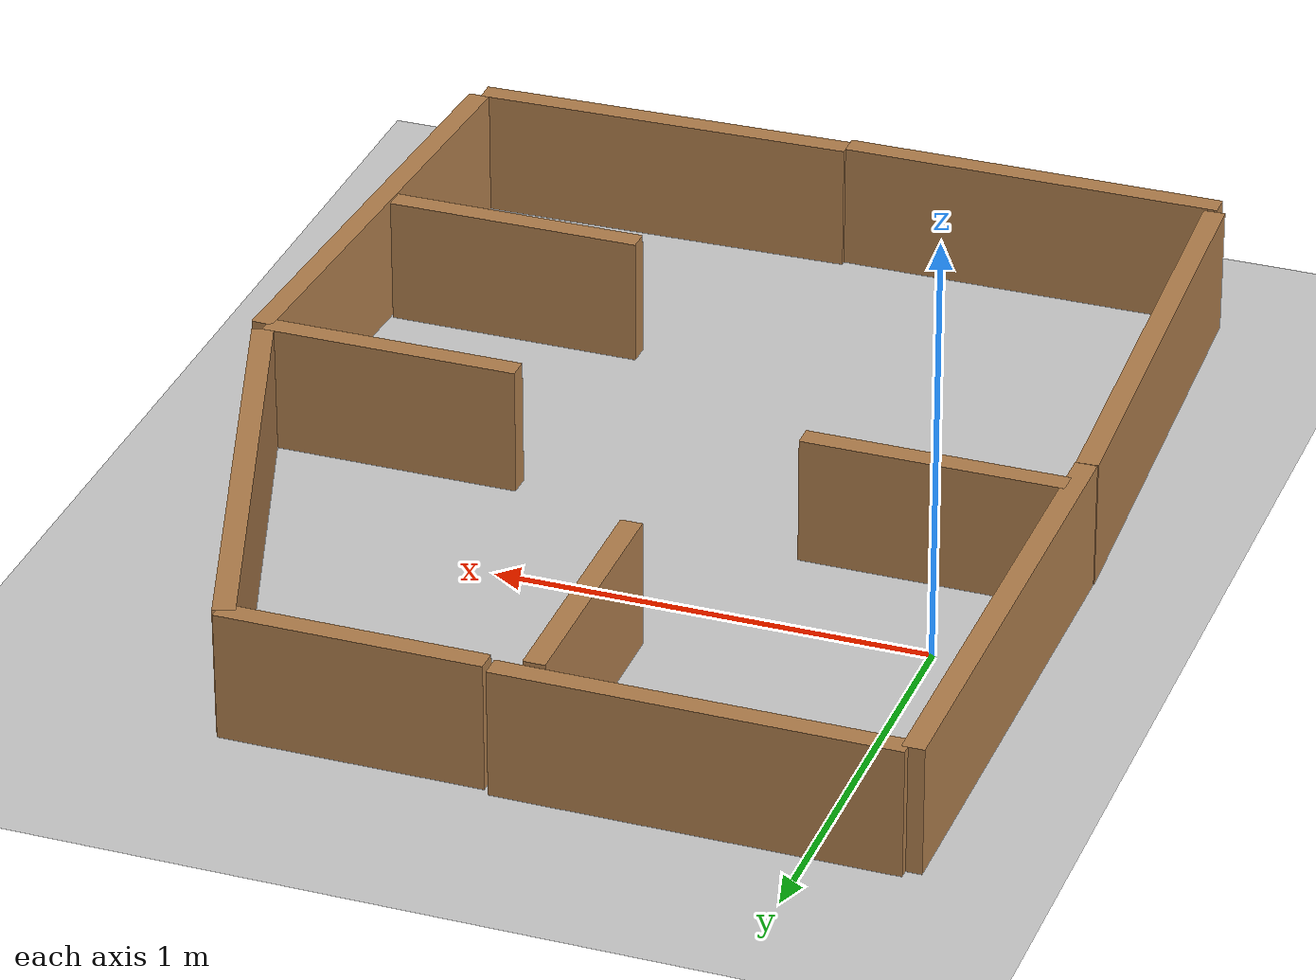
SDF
<sdf version="1.7">
 <world name="default">
  <light name="sun" type="directional">
   <pose>0 0 10 0 -0 0</pose>
   <diffuse>0.8 0.8 0.8 1</diffuse>
   <specular>0.2 0.2 0.2 1</specular>
   <attenuation>
    <range>1000</range>
    <constant>0.9</constant>
    <linear>0.01</linear>
    <quadratic>0.001</quadratic>
   </attenuation>
   <direction>-0.5 0.1 -0.9</direction>
   <spot><inner_angle>0</inner_angle><outer_angle>0</outer_angle><falloff>0</falloff></spot>
  </light>
  <model name="ground_plane">
   <static>1</static>
   <link name="link">
    <collision name="collision">
     <geometry><plane><normal>0 0 1</normal><size>100 100</size></plane></geometry>
     <surface><friction><ode><mu>100</mu><mu2>50</mu2></ode></friction></surface>
    </collision>
    <visual name="visual">
     <cast_shadows>0</cast_shadows>
     <geometry><plane><normal>0 0 1</normal><size>100 100</size></plane></geometry>
     <material>
      <script><uri>file://media/materials/scripts/gazebo.material</uri><name>Gazebo/Grey</name></script>
     </material>
    </visual>
   </link>
  </model>
  <gravity>0 0 -9.8</gravity>
  <magnetic_field>6e-06 2.3e-05 -4.2e-05</magnetic_field>
  <atmosphere type="adiabatic"/>
  <physics type="ode">
   <max_step_size>0.001</max_step_size>
   <real_time_factor>1</real_time_factor>
   <real_time_update_rate>1000</real_time_update_rate>
  </physics>
  <scene><ambient>0.4 0.4 0.4 1</ambient><background>0.7 0.7 0.7 1</background><shadows>1</shadows></scene>
  <spherical_coordinates>
   <surface_model>EARTH_WGS84</surface_model>
   <latitude_deg>0</latitude_deg>
   <longitude_deg>0</longitude_deg>
   <elevation>0</elevation>
   <heading_deg>0</heading_deg>
  </spherical_coordinates>
  <model name="wall120cm">
   <pose>-0.214479 0.205223 0 0 -0 1.56892</pose>
   <link name="Wall_11">
    <collision name="Wall_11_Collision">
     <geometry><box><size>1.2 0.05 0.3</size></box></geometry>
     <pose>0 0 0.15 0 -0 0</pose>
    </collision>
    <visual name="Wall_11_Visual">
     <pose>0 0 0.15 0 -0 0</pose>
     <geometry><box><size>1.2 0.05 0.3</size></box></geometry>
     <material>
      <script><uri>file://media/materials/scripts/gazebo.material</uri><name>Gazebo/Wood</name></script>
      <ambient>1 1 1 1</ambient>
     </material>
     <meta><layer>0</layer></meta>
    </visual>
   </link>
   <static>1</static>
  </model>
  <model name="wall120cm_0">
   <pose>-0.189576 -0.995457 0 0 -0 1.61665</pose>
   <link name="Wall_11">
    <collision name="Wall_11_Collision">
     <geometry><box><size>1.2 0.05 0.3</size></box></geometry>
     <pose>0 0 0.15 0 -0 0</pose>
    </collision>
    <visual name="Wall_11_Visual">
     <pose>0 0 0.15 0 -0 0</pose>
     <geometry><box><size>1.2 0.05 0.3</size></box></geometry>
     <material>
      <script><uri>file://media/materials/scripts/gazebo.material</uri><name>Gazebo/Wood</name></script>
      <ambient>1 1 1 1</ambient>
     </material>
     <meta><layer>0</layer></meta>
    </visual>
   </link>
   <static>1</static>
  </model>
  <model name="wall120cm_1">
   <pose>1.48953 0.218107 -0 0 0 -1.24233</pose>
   <link name="Wall_11">
    <collision name="Wall_11_Collision">
     <geometry><box><size>1.2 0.05 0.3</size></box></geometry>
     <pose>0 0 0.15 0 -0 0</pose>
    </collision>
    <visual name="Wall_11_Visual">
     <pose>0 0 0.15 0 -0 0</pose>
     <geometry><box><size>1.2 0.05 0.3</size></box></geometry>
     <material>
      <script><uri>file://media/materials/scripts/gazebo.material</uri><name>Gazebo/Wood</name></script>
      <ambient>1 1 1 1</ambient>
     </material>
     <meta><layer>0</layer></meta>
    </visual>
   </link>
   <static>1</static>
  </model>
  <model name="wall120cm_2">
   <pose>1.66681 -0.972043 0 0 0 -1.61799</pose>
   <link name="Wall_11">
    <collision name="Wall_11_Collision">
     <geometry><box><size>1.2 0.05 0.3</size></box></geometry>
     <pose>0 0 0.15 0 -0 0</pose>
    </collision>
    <visual name="Wall_11_Visual">
     <pose>0 0 0.15 0 -0 0</pose>
     <geometry><box><size>1.2 0.05 0.3</size></box></geometry>
     <material>
      <script><uri>file://media/materials/scripts/gazebo.material</uri><name>Gazebo/Wood</name></script>
      <ambient>1 1 1 1</ambient>
     </material>
     <meta><layer>0</layer></meta>
    </visual>
   </link>
   <static>1</static>
  </model>
  <model name="wall90cm">
   <pose>0.247492 0.801464 0 0 -0 0</pose>
   <link name="Wall_6">
    <collision name="Wall_6_Collision">
     <geometry><box><size>0.9 0.05 0.3</size></box></geometry>
     <pose>0 0 0.15 0 -0 0</pose>
    </collision>
    <visual name="Wall_6_Visual">
     <pose>0 0 0.15 0 -0 0</pose>
     <geometry><box><size>0.9 0.05 0.3</size></box></geometry>
     <material>
      <script><uri>file://media/materials/scripts/gazebo.material</uri><name>Gazebo/Wood</name></script>
      <ambient>1 1 1 1</ambient>
     </material>
     <meta><layer>0</layer></meta>
    </visual>
   </link>
   <static>1</static>
  </model>
  <model name="wall90cm_0">
   <pose>0.284078 -1.62786 0 0 -0 0</pose>
   <link name="Wall_6">
    <collision name="Wall_6_Collision">
     <geometry><box><size>0.9 0.05 0.3</size></box></geometry>
     <pose>0 0 0.15 0 -0 0</pose>
    </collision>
    <visual name="Wall_6_Visual">
     <pose>0 0 0.15 0 -0 0</pose>
     <geometry><box><size>0.9 0.05 0.3</size></box></geometry>
     <material>
      <script><uri>file://media/materials/scripts/gazebo.material</uri><name>Gazebo/Wood</name></script>
      <ambient>1 1 1 1</ambient>
     </material>
     <meta><layer>0</layer></meta>
    </visual>
   </link>
   <static>1</static>
  </model>
  <model name="wall90cm_1">
   <pose>1.18418 -1.60535 0 0 -0 0.022045</pose>
   <link name="Wall_6">
    <collision name="Wall_6_Collision">
     <geometry><box><size>0.9 0.05 0.3</size></box></geometry>
     <pose>0 0 0.15 0 -0 0</pose>
    </collision>
    <visual name="Wall_6_Visual">
     <pose>0 0 0.15 0 -0 0</pose>
     <geometry><box><size>0.9 0.05 0.3</size></box></geometry>
     <material>
      <script><uri>file://media/materials/scripts/gazebo.material</uri><name>Gazebo/Wood</name></script>
      <ambient>1 1 1 1</ambient>
     </material>
     <meta><layer>0</layer></meta>
    </visual>
   </link>
   <static>1</static>
  </model>
  <model name="wall60cm">
   <pose>1.01109 0.785588 0 0 -0 0</pose>
   <link name="Wall_4">
    <collision name="Wall_4_Collision">
     <geometry><box><size>0.6 0.05 0.3</size></box></geometry>
     <pose>0 0 0.15 0 -0 0</pose>
    </collision>
    <visual name="Wall_4_Visual">
     <pose>0 0 0.15 0 -0 0</pose>
     <geometry><box><size>0.6 0.05 0.3</size></box></geometry>
     <material>
      <script><uri>file://media/materials/scripts/gazebo.material</uri><name>Gazebo/Wood</name></script>
      <ambient>1 1 1 1</ambient>
     </material>
     <meta><layer>0</layer></meta>
    </visual>
   </link>
   <static>1</static>
  </model>
  <model name="wall60cm_0">
   <pose>0.09804 -0.304434 0 0 -0 0</pose>
   <link name="Wall_4">
    <collision name="Wall_4_Collision">
     <geometry><box><size>0.6 0.05 0.3</size></box></geometry>
     <pose>0 0 0.15 0 -0 0</pose>
    </collision>
    <visual name="Wall_4_Visual">
     <pose>0 0 0.15 0 -0 0</pose>
     <geometry><box><size>0.6 0.05 0.3</size></box></geometry>
     <material>
      <script><uri>file://media/materials/scripts/gazebo.material</uri><name>Gazebo/Wood</name></script>
      <ambient>1 1 1 1</ambient>
     </material>
     <meta><layer>0</layer></meta>
    </visual>
   </link>
   <static>1</static>
  </model>
  <model name="wall60cm_1">
   <pose>1.38331 -0.372661 0 0 -0 0</pose>
   <link name="Wall_4">
    <collision name="Wall_4_Collision">
     <geometry><box><size>0.6 0.05 0.3</size></box></geometry>
     <pose>0 0 0.15 0 -0 0</pose>
    </collision>
    <visual name="Wall_4_Visual">
     <pose>0 0 0.15 0 -0 0</pose>
     <geometry><box><size>0.6 0.05 0.3</size></box></geometry>
     <material>
      <script><uri>file://media/materials/scripts/gazebo.material</uri><name>Gazebo/Wood</name></script>
      <ambient>1 1 1 1</ambient>
     </material>
     <meta><layer>0</layer></meta>
    </visual>
   </link>
   <static>1</static>
  </model>
  <model name="wall60cm_2">
   <pose>1.33559 -1.0201 0 0 -0 0</pose>
   <link name="Wall_4">
    <collision name="Wall_4_Collision">
     <geometry><box><size>0.6 0.05 0.3</size></box></geometry>
     <pose>0 0 0.15 0 -0 0</pose>
    </collision>
    <visual name="Wall_4_Visual">
     <pose>0 0 0.15 0 -0 0</pose>
     <geometry><box><size>0.6 0.05 0.3</size></box></geometry>
     <material>
      <script><uri>file://media/materials/scripts/gazebo.material</uri><name>Gazebo/Wood</name></script>
      <ambient>1 1 1 1</ambient>
     </material>
     <meta><layer>0</layer></meta>
    </visual>
   </link>
   <static>1</static>
  </model>
  <model name="wall60cm_3">
   <pose>0.619644 0.461942 0 0 -0 1.58035</pose>
   <link name="Wall_4">
    <collision name="Wall_4_Collision">
     <geometry><box><size>0.6 0.05 0.3</size></box></geometry>
     <pose>0 0 0.15 0 -0 0</pose>
    </collision>
    <visual name="Wall_4_Visual">
     <pose>0 0 0.15 0 -0 0</pose>
     <geometry><box><size>0.6 0.05 0.3</size></box></geometry>
     <material>
      <script><uri>file://media/materials/scripts/gazebo.material</uri><name>Gazebo/Wood</name></script>
      <ambient>1 1 1 1</ambient>
     </material>
     <meta><layer>0</layer></meta>
    </visual>
   </link>
   <static>1</static>
  </model>
 </world>
</sdf>
